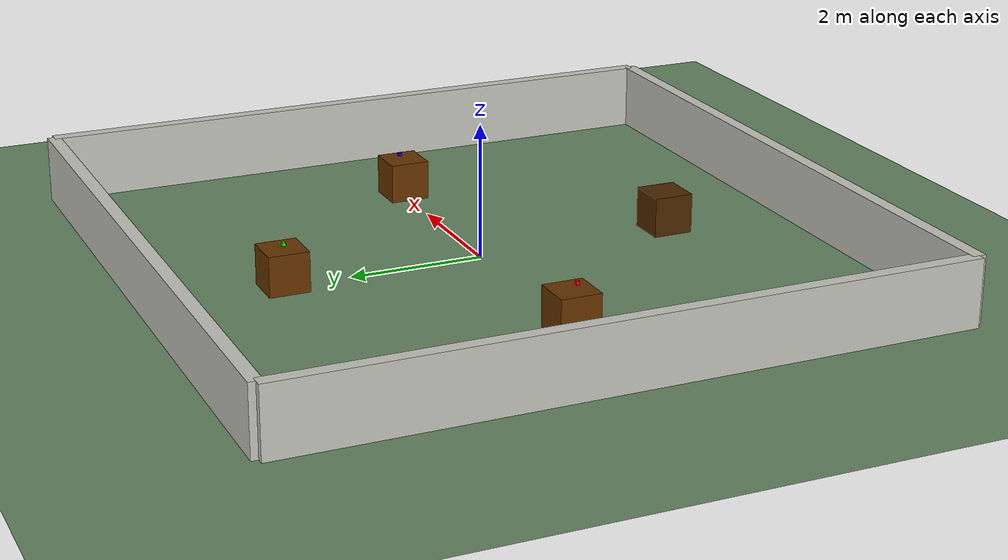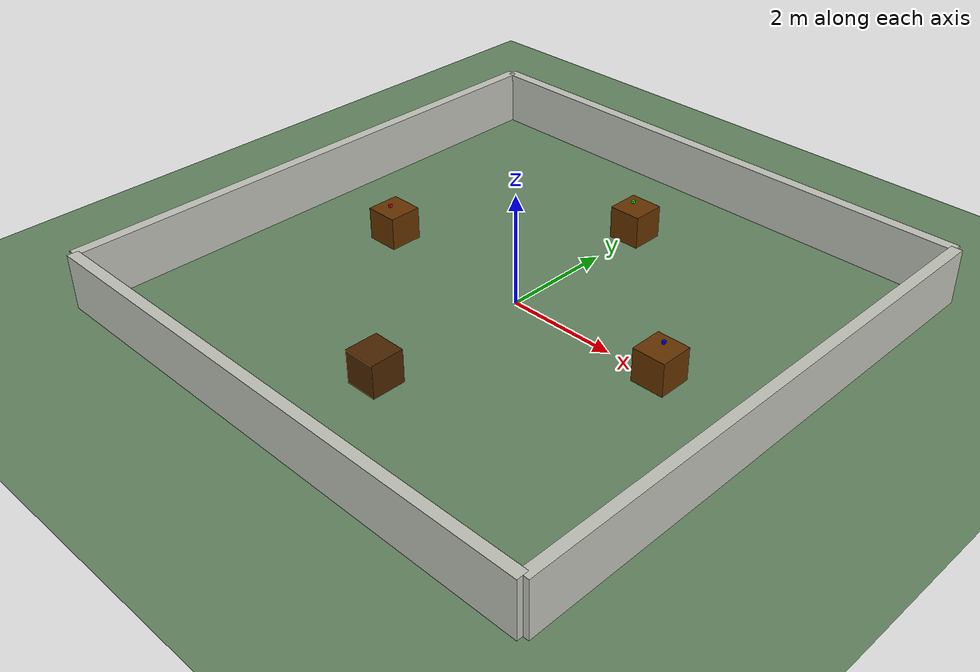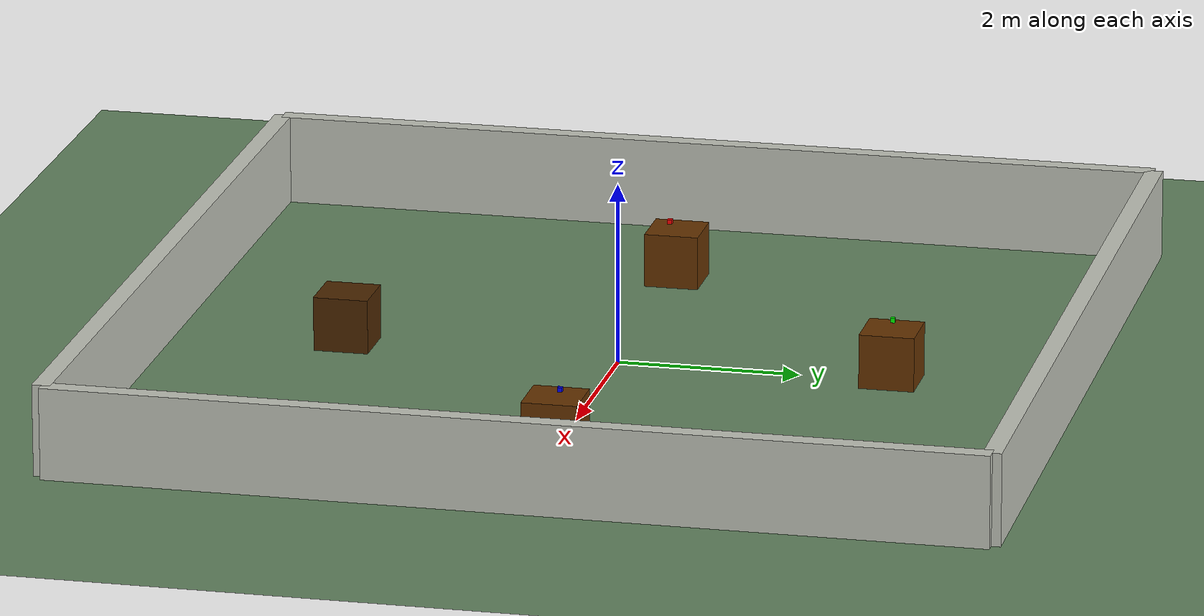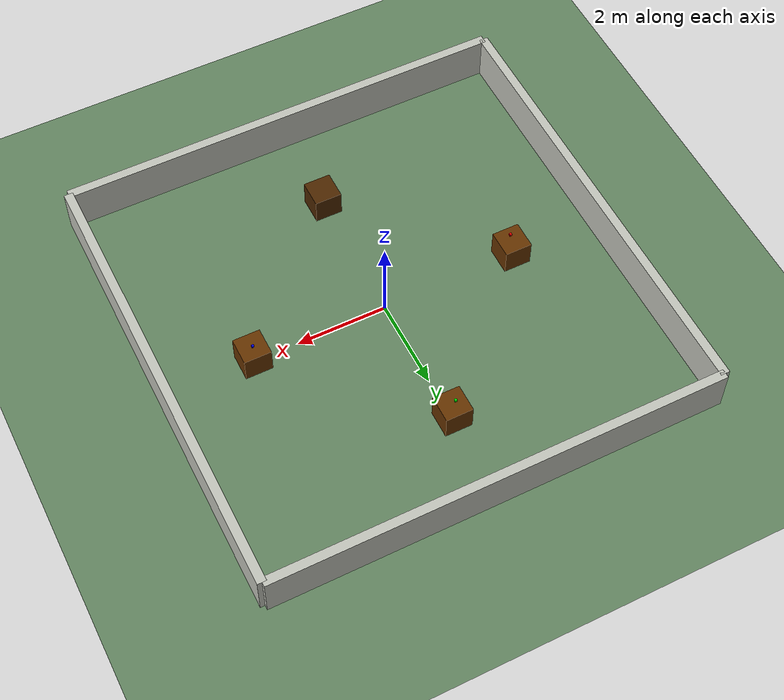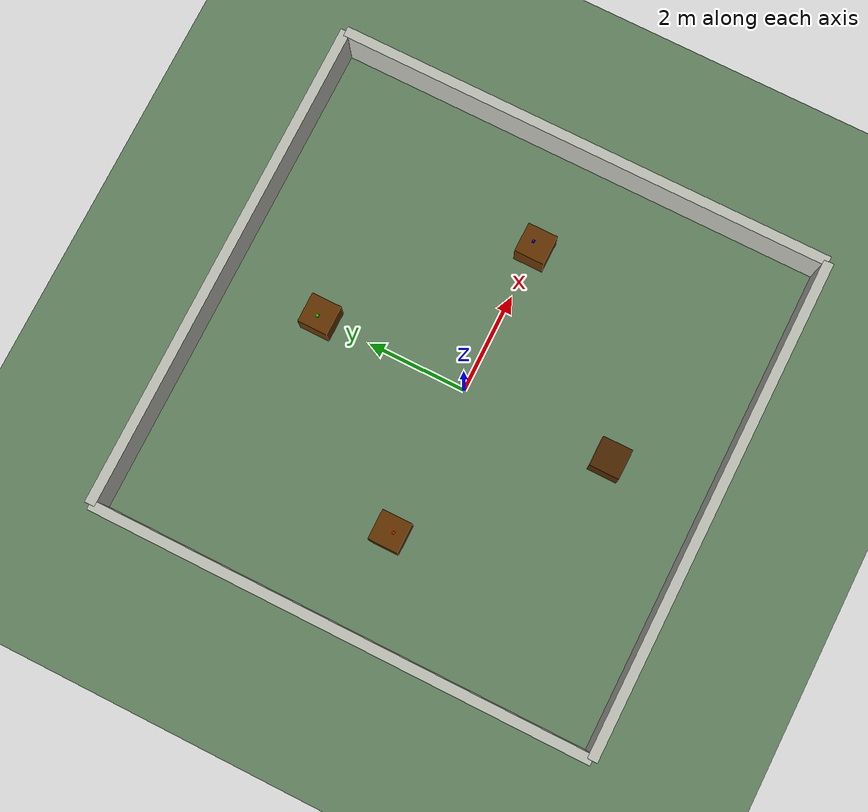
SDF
<?xml  version="1.0" ?>
<sdf version="1.7">
  <world name="empty_robot_world">
    <!-- System plugins -->
    <plugin filename="gz-sim-physics-system" name="gz::sim::systems::Physics"/>
    <plugin filename="gz-sim-user-commands-system" name="gz::sim::systems::UserCommands"/>
    <plugin filename="gz-sim-scene-broadcaster-system" name="gz::sim::systems::SceneBroadcaster"/>
    <plugin filename="gz-sim-sensors-system" name="gz::sim::systems::Sensors">
      <render_engine>ogre2</render_engine>
    </plugin>
    <plugin filename="gz-sim-contact-system" name="gz::sim::systems::Contact"/>

    <gravity>0 0 -9.8</gravity>
    <magnetic_field>6e-06 2.3e-05 -4.2e-05</magnetic_field>
    <atmosphere type="adiabatic"/>
    <scene>
      <!-- Soft outdoor palette; rendering only. -->
      <ambient>0.48 0.51 0.53 1</ambient>
      <background>0.58 0.72 0.82 1</background>
      <sky/>
    </scene>
    <light type="directional" name="sun">
      <direction>-0.5 0.1 -0.9</direction>
      <cast_shadows>true</cast_shadows>
      <pose>0 0 10 0 0 0</pose>
    </light>
    <model name='ground_plane'>
      <static>true</static>
      <link name='link'>
        <collision name='collision'>
          <geometry>
            <plane>
              <normal>0 0 1</normal>
              <size>100 100</size>
            </plane>
          </geometry>
          <surface>
            <friction>
              <ode>
                <!-- Zemini her yönde kaymaz yapıyoruz -->
                <mu>1000.0</mu>
                <mu2>1000.0</mu2>
              </ode>
            </friction>
            <contact>
              <ode>
                <!-- Ağır robotun zeminde titremesini engeller -->
                <kp>10000000.0</kp>
                <kd>1.0</kd>
              </ode>
            </contact>
          </surface>
        </collision>
        <visual name='visual'>
          <geometry>
            <plane>
              <normal>0 0 1</normal>
              <size>100 100</size>
            </plane>
          </geometry>
          <material>
            <!-- A restrained sage-green terrain surface keeps the arena
                 readable without introducing height or collision changes. -->
            <ambient>0.22 0.31 0.22 1</ambient>
            <diffuse>0.39 0.52 0.38 1</diffuse>
            <specular>0.06 0.08 0.06 1</specular>
            <pbr><metal><metalness>0.0</metalness><roughness>0.92</roughness></metal></pbr>
          </material>
        </visual>
      </link>
    </model>
    <!-- ====== WALLS (10x10 m oda) ====== -->
    <model name="wall_north">
      <static>true</static>
      <pose>0 5 0.5 0 0 0</pose>
      <link name="link">
        <collision name="collision"><geometry><box><size>10 0.2 1.0</size></box></geometry></collision>
        <visual name="visual"><geometry><box><size>10 0.2 1.0</size></box></geometry>
          <material><ambient>0.53 0.54 0.52 1</ambient><diffuse>0.76 0.77 0.73 1</diffuse></material>
        </visual>
      </link>
    </model>
    <model name="wall_south">
      <static>true</static>
      <pose>0 -5 0.5 0 0 0</pose>
      <link name="link">
        <collision name="collision"><geometry><box><size>10 0.2 1.0</size></box></geometry></collision>
        <visual name="visual"><geometry><box><size>10 0.2 1.0</size></box></geometry>
          <material><ambient>0.53 0.54 0.52 1</ambient><diffuse>0.76 0.77 0.73 1</diffuse></material>
        </visual>
      </link>
    </model>
    <model name="wall_east">
      <static>true</static>
      <pose>5 0 0.5 0 0 0</pose>
      <link name="link">
        <collision name="collision"><geometry><box><size>0.2 10 1.0</size></box></geometry></collision>
        <visual name="visual"><geometry><box><size>0.2 10 1.0</size></box></geometry>
          <material><ambient>0.53 0.54 0.52 1</ambient><diffuse>0.76 0.77 0.73 1</diffuse></material>
        </visual>
      </link>
    </model>
    <model name="wall_west">
      <static>true</static>
      <pose>-5 0 0.5 0 0 0</pose>
      <link name="link">
        <collision name="collision"><geometry><box><size>0.2 10 1.0</size></box></geometry></collision>
        <visual name="visual"><geometry><box><size>0.2 10 1.0</size></box></geometry>
          <material><ambient>0.53 0.54 0.52 1</ambient><diffuse>0.76 0.77 0.73 1</diffuse></material>
        </visual>
      </link>
    </model>

    <!-- ===== TABLE 1: RED CUBE (-3, 0) ===== -->
    <model name="table_red">
      <pose>-3.0 0.0 0.3 0 0 0</pose>
      <static>true</static>
      <link name="link">
        <collision name="collision">
          <geometry><box><size>0.6 0.6 0.6</size></box></geometry>
        </collision>
        <visual name="visual">
          <geometry><box><size>0.6 0.6 0.6</size></box></geometry>
          <material>
            <ambient>0.4 0.2 0.0 1</ambient>
            <diffuse>0.4 0.2 0.0 1</diffuse>
          </material>
        </visual>
      </link>
    </model>

    <model name="red_cube">
      <pose>-3.0 -0.077 0.675 0 0 0</pose>
      <link name="link">
        <inertial>
          <mass>0.03</mass>
          <inertia><ixx>1.25e-5</ixx><iyy>1.25e-5</iyy><izz>1.25e-5</izz></inertia>
        </inertial>
        <collision name="collision">
          <geometry><box><size>0.05 0.05 0.05</size></box></geometry>
          <surface>
            <contact><ode><max_vel>0.01</max_vel><min_depth>0.003</min_depth></ode></contact>
            <friction><ode><mu>5.0</mu><mu2>5.0</mu2></ode></friction>
          </surface>
        </collision>
        <visual name="visual">
          <geometry><box><size>0.05 0.05 0.05</size></box></geometry>
          <material><ambient>1 0 0 1</ambient><diffuse>1 0 0 1</diffuse></material>
        </visual>
      </link>
    </model>

    <!-- ===== TABLE 2: BLUE CUBE (3, 0) ===== -->
    <model name="table_blue">
      <pose>3.0 0.0 0.3 0 0 0</pose>
      <static>true</static>
      <link name="link">
        <collision name="collision">
          <geometry><box><size>0.6 0.6 0.6</size></box></geometry>
        </collision>
        <visual name="visual">
          <geometry><box><size>0.6 0.6 0.6</size></box></geometry>
          <material>
            <ambient>0.4 0.2 0.0 1</ambient>
            <diffuse>0.4 0.2 0.0 1</diffuse>
          </material>
        </visual>
      </link>
    </model>

    <model name="blue_cube">
      <pose>3.0 0.053 0.675 0 0 0</pose>
      <link name="link">
        <inertial>
          <mass>0.03</mass>
          <inertia><ixx>1.25e-5</ixx><iyy>1.25e-5</iyy><izz>1.25e-5</izz></inertia>
        </inertial>
        <collision name="collision">
          <geometry><box><size>0.05 0.05 0.05</size></box></geometry>
          <surface>
            <contact><ode><max_vel>0.01</max_vel><min_depth>0.003</min_depth></ode></contact>
            <friction><ode><mu>5.0</mu><mu2>5.0</mu2></ode></friction>
          </surface>
        </collision>
        <visual name="visual">
          <geometry><box><size>0.05 0.05 0.05</size></box></geometry>
          <material><ambient>0 0 1 1</ambient><diffuse>0 0 1 1</diffuse></material>
        </visual>
      </link>
    </model>

    <!-- ===== TABLE 3: GREEN CUBE (0, 3) ===== -->
    <model name="table_green">
      <pose>0.0 3.0 0.3 0 0 0</pose>
      <static>true</static>
      <link name="link">
        <collision name="collision">
          <geometry><box><size>0.6 0.6 0.6</size></box></geometry>
        </collision>
        <visual name="visual">
          <geometry><box><size>0.6 0.6 0.6</size></box></geometry>
          <material>
            <ambient>0.4 0.2 0.0 1</ambient>
            <diffuse>0.4 0.2 0.0 1</diffuse>
          </material>
        </visual>
      </link>
    </model>

    <model name="green_cube">
      <pose>-0.06 3.0 0.675 0 0 1.5708</pose>
      <link name="link">
        <inertial>
          <mass>0.03</mass>
          <inertia><ixx>1.25e-5</ixx><iyy>1.25e-5</iyy><izz>1.25e-5</izz></inertia>
        </inertial>
        <collision name="collision">
          <geometry><box><size>0.05 0.05 0.05</size></box></geometry>
          <surface>
            <contact><ode><max_vel>0.01</max_vel><min_depth>0.003</min_depth></ode></contact>
            <friction><ode><mu>5.0</mu><mu2>5.0</mu2></ode></friction>
          </surface>
        </collision>
        <visual name="visual">
          <geometry><box><size>0.05 0.05 0.05</size></box></geometry>
          <material><ambient>0 1 0 1</ambient><diffuse>0 1 0 1</diffuse></material>
        </visual>
      </link>
    </model>

    <!-- ===== TABLE 4: STACK ZONE (0, -3) ===== -->
    <model name="table_stack">
      <pose>0.0 -3.0 0.3 0 0 0</pose>
      <static>true</static>
      <link name="link">
        <collision name="collision">
          <geometry><box><size>0.6 0.6 0.6</size></box></geometry>
        </collision>
        <visual name="visual">
          <geometry><box><size>0.6 0.6 0.6</size></box></geometry>
          <material>
            <ambient>0.3 0.15 0.0 1</ambient>
            <diffuse>0.3 0.15 0.0 1</diffuse>
          </material>
        </visual>
      </link>
    </model>
  </world>
</sdf>
